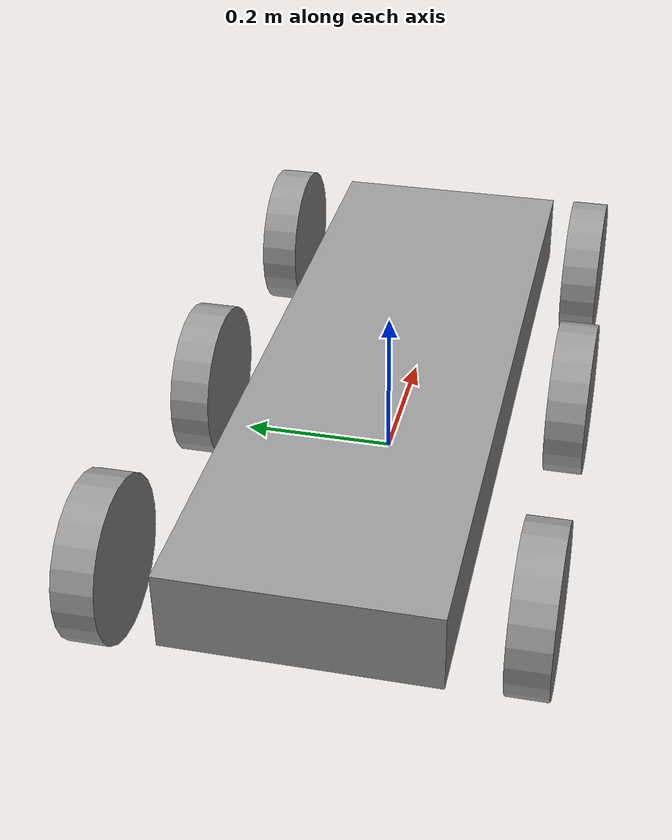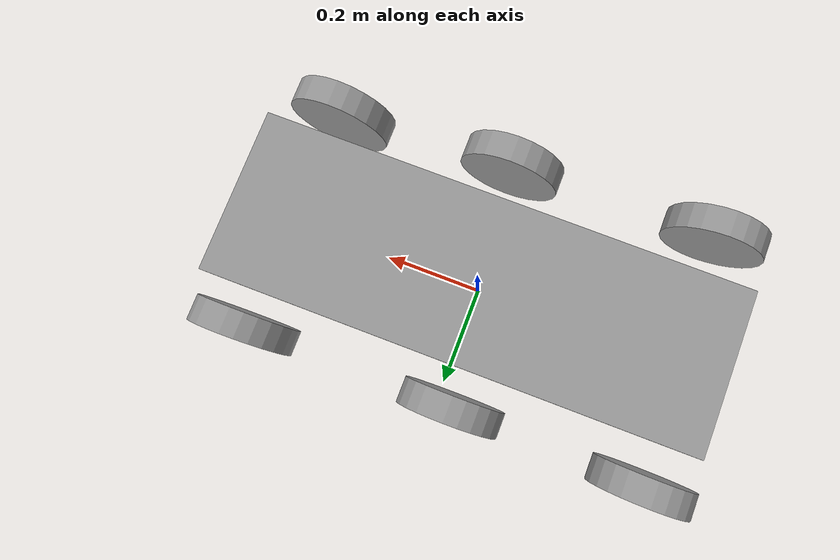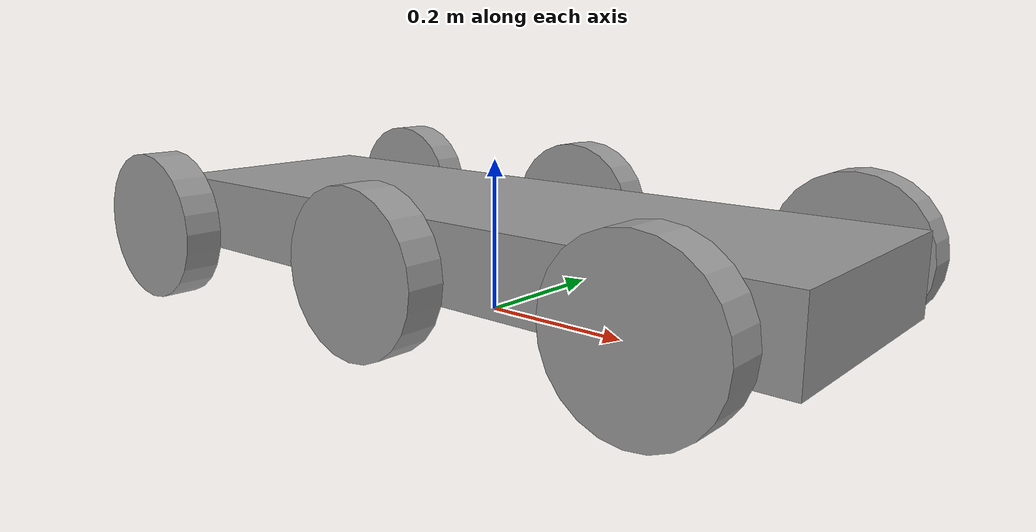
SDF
<?xml version='1.0'?>
<sdf version='1.6'>
  <model name='robot'>
    <link name='link_0'>
      <pose frame=''>-0 0 0.1 0 -0 0</pose>
      <inertial>
        <mass>4.00076</mass>
        <inertia>
          <ixx>0.0386404</ixx>
          <ixy>0</ixy>
          <ixz>0</ixz>
          <iyy>0.325805</iyy>
          <iyz>0</iyz>
          <izz>0.357777</izz>
        </inertia>
        <pose frame=''>0 0 0 0 -0 0</pose>
      </inertial>
      <gravity>1</gravity>
      <self_collide>0</self_collide>
      <kinematic>0</kinematic>
      <visual name='visual'>
        <pose frame=''>0 0 0 0 -0 0</pose>
        <geometry>
          <box>
            <size>0.983477 0.325421 0.1</size>
          </box>
        </geometry>
        <material>
          <lighting>1</lighting>
          <script>
            <uri>file://media/materials/scripts/gazebo.material</uri>
            <name>Gazebo/Grey</name>
          </script>
          <shader type='pixel'>
            <normal_map>__default__</normal_map>
          </shader>
          <ambient>0.3 0.3 0.3 1</ambient>
          <diffuse>0.7 0.7 0.7 1</diffuse>
          <specular>0.01 0.01 0.01 1</specular>
          <emissive>0 0 0 1</emissive>
        </material>
        <transparency>0</transparency>
        <cast_shadows>1</cast_shadows>
      </visual>
      <collision name='collision'>
        <laser_retro>0</laser_retro>
        <max_contacts>10</max_contacts>
        <pose frame=''>0 0 0 0 -0 0</pose>
        <geometry>
          <box>
            <size>0.983477 0.325421 0.1</size>
          </box>
        </geometry>
        <surface>
          <friction>
            <ode>
              <mu>1</mu>
              <mu2>1</mu2>
              <fdir1>0 0 0</fdir1>
              <slip1>0</slip1>
              <slip2>0</slip2>
            </ode>
            <torsional>
              <coefficient>1</coefficient>
              <patch_radius>0</patch_radius>
              <surface_radius>0</surface_radius>
              <use_patch_radius>1</use_patch_radius>
              <ode>
                <slip>0</slip>
              </ode>
            </torsional>
          </friction>
          <bounce>
            <restitution_coefficient>0</restitution_coefficient>
            <threshold>1e+06</threshold>
          </bounce>
          <contact>
            <collide_without_contact>0</collide_without_contact>
            <collide_without_contact_bitmask>1</collide_without_contact_bitmask>
            <collide_bitmask>1</collide_bitmask>
            <ode>
              <soft_cfm>0</soft_cfm>
              <soft_erp>0.2</soft_erp>
              <kp>1e+13</kp>
              <kd>1</kd>
              <max_vel>0.01</max_vel>
              <min_depth>0</min_depth>
            </ode>
            <bullet>
              <split_impulse>1</split_impulse>
              <split_impulse_penetration_threshold>-0.01</split_impulse_penetration_threshold>
              <soft_cfm>0</soft_cfm>
              <soft_erp>0.2</soft_erp>
              <kp>1e+13</kp>
              <kd>1</kd>
            </bullet>
          </contact>
        </surface>
      </collision>
    </link>
    <link name='link_1'>
      <pose frame=''>0.387288 0.231079 0.10001 -0.000572 1.5707 1.57013</pose>
      <inertial>
        <mass>1</mass>
        <inertia>
          <ixx>0.145833</ixx>
          <ixy>0</ixy>
          <ixz>0</ixz>
          <iyy>0.145833</iyy>
          <iyz>0</iyz>
          <izz>0.125</izz>
        </inertia>
        <pose frame=''>0 0 0 0 -0 0</pose>
      </inertial>
      <gravity>1</gravity>
      <self_collide>0</self_collide>
      <kinematic>0</kinematic>
      <visual name='visual'>
        <pose frame=''>0 0 0 0 -0 0</pose>
        <geometry>
          <cylinder>
            <radius>0.1</radius>
            <length>0.05</length>
          </cylinder>
        </geometry>
        <material>
          <lighting>1</lighting>
          <script>
            <uri>file://media/materials/scripts/gazebo.material</uri>
            <name>Gazebo/Grey</name>
          </script>
          <shader type='pixel'>
            <normal_map>__default__</normal_map>
          </shader>
          <ambient>0.3 0.3 0.3 1</ambient>
          <diffuse>0.7 0.7 0.7 1</diffuse>
          <specular>0.01 0.01 0.01 1</specular>
          <emissive>0 0 0 1</emissive>
        </material>
        <transparency>0</transparency>
        <cast_shadows>1</cast_shadows>
      </visual>
      <collision name='collision'>
        <laser_retro>0</laser_retro>
        <max_contacts>10</max_contacts>
        <pose frame=''>0 0 0 0 -0 0</pose>
        <geometry>
          <cylinder>
            <radius>0.1</radius>
            <length>0.05</length>
          </cylinder>
        </geometry>
        <surface>
          <friction>
            <ode>
              <mu>1</mu>
              <mu2>1</mu2>
              <fdir1>0 0 0</fdir1>
              <slip1>0</slip1>
              <slip2>0</slip2>
            </ode>
            <torsional>
              <coefficient>1</coefficient>
              <patch_radius>0</patch_radius>
              <surface_radius>0</surface_radius>
              <use_patch_radius>1</use_patch_radius>
              <ode>
                <slip>0</slip>
              </ode>
            </torsional>
          </friction>
          <bounce>
            <restitution_coefficient>0</restitution_coefficient>
            <threshold>1e+06</threshold>
          </bounce>
          <contact>
            <collide_without_contact>0</collide_without_contact>
            <collide_without_contact_bitmask>1</collide_without_contact_bitmask>
            <collide_bitmask>1</collide_bitmask>
            <ode>
              <soft_cfm>0</soft_cfm>
              <soft_erp>0.2</soft_erp>
              <kp>1e+13</kp>
              <kd>1</kd>
              <max_vel>0.01</max_vel>
              <min_depth>0</min_depth>
            </ode>
            <bullet>
              <split_impulse>1</split_impulse>
              <split_impulse_penetration_threshold>-0.01</split_impulse_penetration_threshold>
              <soft_cfm>0</soft_cfm>
              <soft_erp>0.2</soft_erp>
              <kp>1e+13</kp>
              <kd>1</kd>
            </bullet>
          </contact>
        </surface>
      </collision>
    </link>
    <link name='link_1_clone'>
      <pose frame=''>-0.034946 0.236686 0.10001 -0.000572 1.5707 1.57013</pose>
      <inertial>
        <mass>1</mass>
        <inertia>
          <ixx>0.145833</ixx>
          <ixy>0</ixy>
          <ixz>0</ixz>
          <iyy>0.145833</iyy>
          <iyz>0</iyz>
          <izz>0.125</izz>
        </inertia>
        <pose frame=''>0 0 0 0 -0 0</pose>
      </inertial>
      <self_collide>0</self_collide>
      <kinematic>0</kinematic>
      <visual name='visual'>
        <pose frame=''>0 0 0 0 -0 0</pose>
        <geometry>
          <cylinder>
            <radius>0.1</radius>
            <length>0.05</length>
          </cylinder>
        </geometry>
        <material>
          <lighting>1</lighting>
          <script>
            <uri>file://media/materials/scripts/gazebo.material</uri>
            <name>Gazebo/Grey</name>
          </script>
          <shader type='pixel'>
            <normal_map>__default__</normal_map>
          </shader>
          <ambient>0.3 0.3 0.3 1</ambient>
          <diffuse>0.7 0.7 0.7 1</diffuse>
          <specular>0.01 0.01 0.01 1</specular>
          <emissive>0 0 0 1</emissive>
        </material>
        <transparency>0</transparency>
        <cast_shadows>1</cast_shadows>
      </visual>
      <collision name='collision'>
        <laser_retro>0</laser_retro>
        <max_contacts>10</max_contacts>
        <pose frame=''>0 0 0 0 -0 0</pose>
        <geometry>
          <cylinder>
            <radius>0.1</radius>
            <length>0.05</length>
          </cylinder>
        </geometry>
        <surface>
          <friction>
            <ode>
              <mu>1</mu>
              <mu2>1</mu2>
              <fdir1>0 0 0</fdir1>
              <slip1>0</slip1>
              <slip2>0</slip2>
            </ode>
            <torsional>
              <coefficient>1</coefficient>
              <patch_radius>0</patch_radius>
              <surface_radius>0</surface_radius>
              <use_patch_radius>1</use_patch_radius>
              <ode>
                <slip>0</slip>
              </ode>
            </torsional>
          </friction>
          <bounce>
            <restitution_coefficient>0</restitution_coefficient>
            <threshold>1e+06</threshold>
          </bounce>
          <contact>
            <collide_without_contact>0</collide_without_contact>
            <collide_without_contact_bitmask>1</collide_without_contact_bitmask>
            <collide_bitmask>1</collide_bitmask>
            <ode>
              <soft_cfm>0</soft_cfm>
              <soft_erp>0.2</soft_erp>
              <kp>1e+13</kp>
              <kd>1</kd>
              <max_vel>0.01</max_vel>
              <min_depth>0</min_depth>
            </ode>
            <bullet>
              <split_impulse>1</split_impulse>
              <split_impulse_penetration_threshold>-0.01</split_impulse_penetration_threshold>
              <soft_cfm>0</soft_cfm>
              <soft_erp>0.2</soft_erp>
              <kp>1e+13</kp>
              <kd>1</kd>
            </bullet>
          </contact>
        </surface>
      </collision>
    </link>
    <link name='link_1_clone_0'>
      <pose frame=''>-0.414236 0.246471 0.10001 -0.000572 1.5707 1.57013</pose>
      <inertial>
        <mass>1</mass>
        <inertia>
          <ixx>0.145833</ixx>
          <ixy>0</ixy>
          <ixz>0</ixz>
          <iyy>0.145833</iyy>
          <iyz>0</iyz>
          <izz>0.125</izz>
        </inertia>
        <pose frame=''>0 0 0 0 -0 0</pose>
      </inertial>
      <self_collide>0</self_collide>
      <kinematic>0</kinematic>
      <visual name='visual'>
        <pose frame=''>0 0 0 0 -0 0</pose>
        <geometry>
          <cylinder>
            <radius>0.1</radius>
            <length>0.05</length>
          </cylinder>
        </geometry>
        <material>
          <lighting>1</lighting>
          <script>
            <uri>file://media/materials/scripts/gazebo.material</uri>
            <name>Gazebo/Grey</name>
          </script>
          <shader type='pixel'>
            <normal_map>__default__</normal_map>
          </shader>
          <ambient>0.3 0.3 0.3 1</ambient>
          <diffuse>0.7 0.7 0.7 1</diffuse>
          <specular>0.01 0.01 0.01 1</specular>
          <emissive>0 0 0 1</emissive>
        </material>
        <transparency>0</transparency>
        <cast_shadows>1</cast_shadows>
      </visual>
      <collision name='collision'>
        <laser_retro>0</laser_retro>
        <max_contacts>10</max_contacts>
        <pose frame=''>0 0 0 0 -0 0</pose>
        <geometry>
          <cylinder>
            <radius>0.1</radius>
            <length>0.05</length>
          </cylinder>
        </geometry>
        <surface>
          <friction>
            <ode>
              <mu>1</mu>
              <mu2>1</mu2>
              <fdir1>0 0 0</fdir1>
              <slip1>0</slip1>
              <slip2>0</slip2>
            </ode>
            <torsional>
              <coefficient>1</coefficient>
              <patch_radius>0</patch_radius>
              <surface_radius>0</surface_radius>
              <use_patch_radius>1</use_patch_radius>
              <ode>
                <slip>0</slip>
              </ode>
            </torsional>
          </friction>
          <bounce>
            <restitution_coefficient>0</restitution_coefficient>
            <threshold>1e+06</threshold>
          </bounce>
          <contact>
            <collide_without_contact>0</collide_without_contact>
            <collide_without_contact_bitmask>1</collide_without_contact_bitmask>
            <collide_bitmask>1</collide_bitmask>
            <ode>
              <soft_cfm>0</soft_cfm>
              <soft_erp>0.2</soft_erp>
              <kp>1e+13</kp>
              <kd>1</kd>
              <max_vel>0.01</max_vel>
              <min_depth>0</min_depth>
            </ode>
            <bullet>
              <split_impulse>1</split_impulse>
              <split_impulse_penetration_threshold>-0.01</split_impulse_penetration_threshold>
              <soft_cfm>0</soft_cfm>
              <soft_erp>0.2</soft_erp>
              <kp>1e+13</kp>
              <kd>1</kd>
            </bullet>
          </contact>
        </surface>
      </collision>
    </link>
    <link name='link_1_clone_1'>
      <pose frame=''>0.018916 -0.242775 0.10001 -0.000572 1.5707 1.57013</pose>
      <inertial>
        <mass>1</mass>
        <inertia>
          <ixx>0.145833</ixx>
          <ixy>0</ixy>
          <ixz>0</ixz>
          <iyy>0.145833</iyy>
          <iyz>0</iyz>
          <izz>0.125</izz>
        </inertia>
        <pose frame=''>0 0 0 0 -0 0</pose>
      </inertial>
      <self_collide>0</self_collide>
      <kinematic>0</kinematic>
      <visual name='visual'>
        <pose frame=''>0 0 0 0 -0 0</pose>
        <geometry>
          <cylinder>
            <radius>0.1</radius>
            <length>0.05</length>
          </cylinder>
        </geometry>
        <material>
          <lighting>1</lighting>
          <script>
            <uri>file://media/materials/scripts/gazebo.material</uri>
            <name>Gazebo/Grey</name>
          </script>
          <shader type='pixel'>
            <normal_map>__default__</normal_map>
          </shader>
          <ambient>0.3 0.3 0.3 1</ambient>
          <diffuse>0.7 0.7 0.7 1</diffuse>
          <specular>0.01 0.01 0.01 1</specular>
          <emissive>0 0 0 1</emissive>
        </material>
        <transparency>0</transparency>
        <cast_shadows>1</cast_shadows>
      </visual>
      <collision name='collision'>
        <laser_retro>0</laser_retro>
        <max_contacts>10</max_contacts>
        <pose frame=''>0 0 0 0 -0 0</pose>
        <geometry>
          <cylinder>
            <radius>0.1</radius>
            <length>0.05</length>
          </cylinder>
        </geometry>
        <surface>
          <friction>
            <ode>
              <mu>1</mu>
              <mu2>1</mu2>
              <fdir1>0 0 0</fdir1>
              <slip1>0</slip1>
              <slip2>0</slip2>
            </ode>
            <torsional>
              <coefficient>1</coefficient>
              <patch_radius>0</patch_radius>
              <surface_radius>0</surface_radius>
              <use_patch_radius>1</use_patch_radius>
              <ode>
                <slip>0</slip>
              </ode>
            </torsional>
          </friction>
          <bounce>
            <restitution_coefficient>0</restitution_coefficient>
            <threshold>1e+06</threshold>
          </bounce>
          <contact>
            <collide_without_contact>0</collide_without_contact>
            <collide_without_contact_bitmask>1</collide_without_contact_bitmask>
            <collide_bitmask>1</collide_bitmask>
            <ode>
              <soft_cfm>0</soft_cfm>
              <soft_erp>0.2</soft_erp>
              <kp>1e+13</kp>
              <kd>1</kd>
              <max_vel>0.01</max_vel>
              <min_depth>0</min_depth>
            </ode>
            <bullet>
              <split_impulse>1</split_impulse>
              <split_impulse_penetration_threshold>-0.01</split_impulse_penetration_threshold>
              <soft_cfm>0</soft_cfm>
              <soft_erp>0.2</soft_erp>
              <kp>1e+13</kp>
              <kd>1</kd>
            </bullet>
          </contact>
        </surface>
      </collision>
    </link>
    <link name='link_1_clone_2'>
      <pose frame=''>-0.397128 -0.249762 0.10001 -0.000572 1.5707 1.57013</pose>
      <inertial>
        <mass>1</mass>
        <inertia>
          <ixx>0.145833</ixx>
          <ixy>0</ixy>
          <ixz>0</ixz>
          <iyy>0.145833</iyy>
          <iyz>0</iyz>
          <izz>0.125</izz>
        </inertia>
        <pose frame=''>0 0 0 0 -0 0</pose>
      </inertial>
      <self_collide>0</self_collide>
      <kinematic>0</kinematic>
      <visual name='visual'>
        <pose frame=''>0 0 0 0 -0 0</pose>
        <geometry>
          <cylinder>
            <radius>0.1</radius>
            <length>0.05</length>
          </cylinder>
        </geometry>
        <material>
          <lighting>1</lighting>
          <script>
            <uri>file://media/materials/scripts/gazebo.material</uri>
            <name>Gazebo/Grey</name>
          </script>
          <shader type='pixel'>
            <normal_map>__default__</normal_map>
          </shader>
          <ambient>0.3 0.3 0.3 1</ambient>
          <diffuse>0.7 0.7 0.7 1</diffuse>
          <specular>0.01 0.01 0.01 1</specular>
          <emissive>0 0 0 1</emissive>
        </material>
        <transparency>0</transparency>
        <cast_shadows>1</cast_shadows>
      </visual>
      <collision name='collision'>
        <laser_retro>0</laser_retro>
        <max_contacts>10</max_contacts>
        <pose frame=''>0 0 0 0 -0 0</pose>
        <geometry>
          <cylinder>
            <radius>0.1</radius>
            <length>0.05</length>
          </cylinder>
        </geometry>
        <surface>
          <friction>
            <ode>
              <mu>1</mu>
              <mu2>1</mu2>
              <fdir1>0 0 0</fdir1>
              <slip1>0</slip1>
              <slip2>0</slip2>
            </ode>
            <torsional>
              <coefficient>1</coefficient>
              <patch_radius>0</patch_radius>
              <surface_radius>0</surface_radius>
              <use_patch_radius>1</use_patch_radius>
              <ode>
                <slip>0</slip>
              </ode>
            </torsional>
          </friction>
          <bounce>
            <restitution_coefficient>0</restitution_coefficient>
            <threshold>1e+06</threshold>
          </bounce>
          <contact>
            <collide_without_contact>0</collide_without_contact>
            <collide_without_contact_bitmask>1</collide_without_contact_bitmask>
            <collide_bitmask>1</collide_bitmask>
            <ode>
              <soft_cfm>0</soft_cfm>
              <soft_erp>0.2</soft_erp>
              <kp>1e+13</kp>
              <kd>1</kd>
              <max_vel>0.01</max_vel>
              <min_depth>0</min_depth>
            </ode>
            <bullet>
              <split_impulse>1</split_impulse>
              <split_impulse_penetration_threshold>-0.01</split_impulse_penetration_threshold>
              <soft_cfm>0</soft_cfm>
              <soft_erp>0.2</soft_erp>
              <kp>1e+13</kp>
              <kd>1</kd>
            </bullet>
          </contact>
        </surface>
      </collision>
    </link>
    <link name='link_2'>
      <pose frame=''>0.370918 -0.225117 0.099991 4.8e-05 1.5707 1.57075</pose>
      <inertial>
        <mass>1</mass>
        <inertia>
          <ixx>0.145833</ixx>
          <ixy>0</ixy>
          <ixz>0</ixz>
          <iyy>0.145833</iyy>
          <iyz>0</iyz>
          <izz>0.125</izz>
        </inertia>
        <pose frame=''>0 0 0 0 -0 0</pose>
      </inertial>
      <gravity>1</gravity>
      <self_collide>0</self_collide>
      <kinematic>0</kinematic>
      <visual name='visual'>
        <pose frame=''>0 0 0 0 -0 0</pose>
        <geometry>
          <cylinder>
            <radius>0.1</radius>
            <length>0.05</length>
          </cylinder>
        </geometry>
        <material>
          <lighting>1</lighting>
          <script>
            <uri>file://media/materials/scripts/gazebo.material</uri>
            <name>Gazebo/Grey</name>
          </script>
          <shader type='pixel'>
            <normal_map>__default__</normal_map>
          </shader>
          <ambient>0.3 0.3 0.3 1</ambient>
          <diffuse>0.7 0.7 0.7 1</diffuse>
          <specular>0.01 0.01 0.01 1</specular>
          <emissive>0 0 0 1</emissive>
        </material>
        <transparency>0</transparency>
        <cast_shadows>1</cast_shadows>
      </visual>
      <collision name='collision'>
        <laser_retro>0</laser_retro>
        <max_contacts>10</max_contacts>
        <pose frame=''>0 0 0 0 -0 0</pose>
        <geometry>
          <cylinder>
            <radius>0.1</radius>
            <length>0.05</length>
          </cylinder>
        </geometry>
        <surface>
          <friction>
            <ode>
              <mu>1</mu>
              <mu2>1</mu2>
              <fdir1>0 0 0</fdir1>
              <slip1>0</slip1>
              <slip2>0</slip2>
            </ode>
            <torsional>
              <coefficient>1</coefficient>
              <patch_radius>0</patch_radius>
              <surface_radius>0</surface_radius>
              <use_patch_radius>1</use_patch_radius>
              <ode>
                <slip>0</slip>
              </ode>
            </torsional>
          </friction>
          <bounce>
            <restitution_coefficient>0</restitution_coefficient>
            <threshold>1e+06</threshold>
          </bounce>
          <contact>
            <collide_without_contact>0</collide_without_contact>
            <collide_without_contact_bitmask>1</collide_without_contact_bitmask>
            <collide_bitmask>1</collide_bitmask>
            <ode>
              <soft_cfm>0</soft_cfm>
              <soft_erp>0.2</soft_erp>
              <kp>1e+13</kp>
              <kd>1</kd>
              <max_vel>0.01</max_vel>
              <min_depth>0</min_depth>
            </ode>
            <bullet>
              <split_impulse>1</split_impulse>
              <split_impulse_penetration_threshold>-0.01</split_impulse_penetration_threshold>
              <soft_cfm>0</soft_cfm>
              <soft_erp>0.2</soft_erp>
              <kp>1e+13</kp>
              <kd>1</kd>
            </bullet>
          </contact>
        </surface>
      </collision>
    </link>
    <joint name='link_0_JOINT_0' type='revolute'>
      <parent>link_0</parent>
      <child>link_2</child>
      <pose frame=''>0 0 -0.03 0 -0 0</pose>
      <axis>
        <xyz>0 1 0</xyz>
        <use_parent_model_frame>0</use_parent_model_frame>
        <limit>
          <lower>-1.79769e+308</lower>
          <upper>1.79769e+308</upper>
          <effort>-1</effort>
          <velocity>-1</velocity>
        </limit>
        <dynamics>
          <spring_reference>0</spring_reference>
          <spring_stiffness>0</spring_stiffness>
          <damping>0</damping>
        </dynamics>
      </axis>
      <physics>
        <ode>
          <limit>
            <cfm>0</cfm>
            <erp>0.2</erp>
          </limit>
          <suspension>
            <cfm>0</cfm>
            <erp>0.2</erp>
          </suspension>
        </ode>
      </physics>
    </joint>
    <joint name='link_0_JOINT_1' type='revolute'>
      <parent>link_0</parent>
      <child>link_1_clone_1</child>
      <pose frame=''>0 0 -0.03 0 -0 0</pose>
      <axis>
        <xyz>0 1 0</xyz>
        <use_parent_model_frame>0</use_parent_model_frame>
        <limit>
          <lower>-1.79769e+308</lower>
          <upper>1.79769e+308</upper>
          <effort>-1</effort>
          <velocity>-1</velocity>
        </limit>
        <dynamics>
          <spring_reference>0</spring_reference>
          <spring_stiffness>0</spring_stiffness>
          <damping>0</damping>
        </dynamics>
      </axis>
      <physics>
        <ode>
          <limit>
            <cfm>0</cfm>
            <erp>0.2</erp>
          </limit>
          <suspension>
            <cfm>0</cfm>
            <erp>0.2</erp>
          </suspension>
        </ode>
      </physics>
    </joint>
    <joint name='link_0_JOINT_2' type='revolute'>
      <parent>link_0</parent>
      <child>link_1_clone_2</child>
      <pose frame=''>0 0 -0.03 0 -0 0</pose>
      <axis>
        <xyz>0 1 0</xyz>
        <use_parent_model_frame>0</use_parent_model_frame>
        <limit>
          <lower>-1.79769e+308</lower>
          <upper>1.79769e+308</upper>
          <effort>-1</effort>
          <velocity>-1</velocity>
        </limit>
        <dynamics>
          <spring_reference>0</spring_reference>
          <spring_stiffness>0</spring_stiffness>
          <damping>0</damping>
        </dynamics>
      </axis>
      <physics>
        <ode>
          <limit>
            <cfm>0</cfm>
            <erp>0.2</erp>
          </limit>
          <suspension>
            <cfm>0</cfm>
            <erp>0.2</erp>
          </suspension>
        </ode>
      </physics>
    </joint>
    <joint name='link_0_JOINT_3' type='revolute'>
      <parent>link_0</parent>
      <child>link_1</child>
      <pose frame=''>0 0 0.03 0 -0 0</pose>
      <axis>
        <xyz>0 1 0</xyz>
        <use_parent_model_frame>0</use_parent_model_frame>
        <limit>
          <lower>-1.79769e+308</lower>
          <upper>1.79769e+308</upper>
          <effort>-1</effort>
          <velocity>-1</velocity>
        </limit>
        <dynamics>
          <spring_reference>0</spring_reference>
          <spring_stiffness>0</spring_stiffness>
          <damping>0</damping>
          <friction>0</friction>
        </dynamics>
      </axis>
      <physics>
        <ode>
          <limit>
            <cfm>0</cfm>
            <erp>0.2</erp>
          </limit>
          <suspension>
            <cfm>0</cfm>
            <erp>0.2</erp>
          </suspension>
        </ode>
      </physics>
    </joint>
    <joint name='link_0_JOINT_4' type='revolute'>
      <parent>link_0</parent>
      <child>link_1_clone</child>
      <pose frame=''>0 0 0.03 0 -0 0</pose>
      <axis>
        <xyz>0 1 0</xyz>
        <use_parent_model_frame>0</use_parent_model_frame>
        <limit>
          <lower>-1.79769e+308</lower>
          <upper>1.79769e+308</upper>
          <effort>-1</effort>
          <velocity>-1</velocity>
        </limit>
        <dynamics>
          <spring_reference>0</spring_reference>
          <spring_stiffness>0</spring_stiffness>
          <damping>0</damping>
          <friction>0</friction>
        </dynamics>
      </axis>
      <physics>
        <ode>
          <limit>
            <cfm>0</cfm>
            <erp>0.2</erp>
          </limit>
          <suspension>
            <cfm>0</cfm>
            <erp>0.2</erp>
          </suspension>
        </ode>
      </physics>
    </joint>
    <joint name='link_0_JOINT_5' type='revolute'>
      <parent>link_0</parent>
      <child>link_1_clone_0</child>
      <pose frame=''>0 0 0.03 0 -0 0</pose>
      <axis>
        <xyz>0 1 0</xyz>
        <use_parent_model_frame>0</use_parent_model_frame>
        <limit>
          <lower>-1.79769e+308</lower>
          <upper>1.79769e+308</upper>
          <effort>-1</effort>
          <velocity>-1</velocity>
        </limit>
        <dynamics>
          <spring_reference>0</spring_reference>
          <spring_stiffness>0</spring_stiffness>
          <damping>0</damping>
        </dynamics>
      </axis>
      <physics>
        <ode>
          <limit>
            <cfm>0</cfm>
            <erp>0.2</erp>
          </limit>
          <suspension>
            <cfm>0</cfm>
            <erp>0.2</erp>
          </suspension>
        </ode>
      </physics>
    </joint>
    <static>1</static>
    <allow_auto_disable>1</allow_auto_disable>
  </model>
</sdf>
